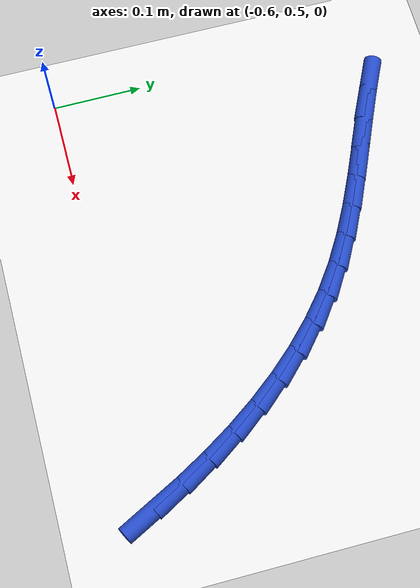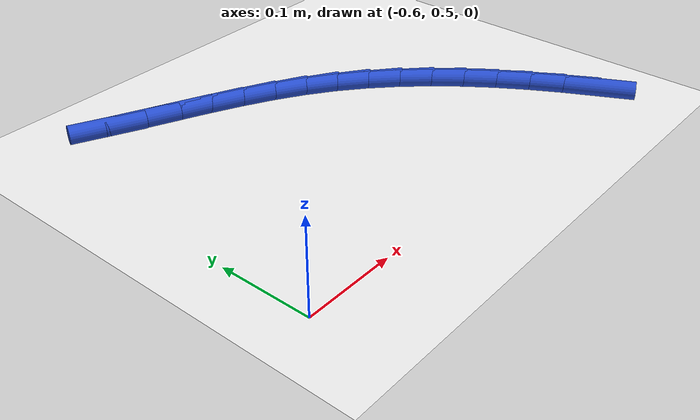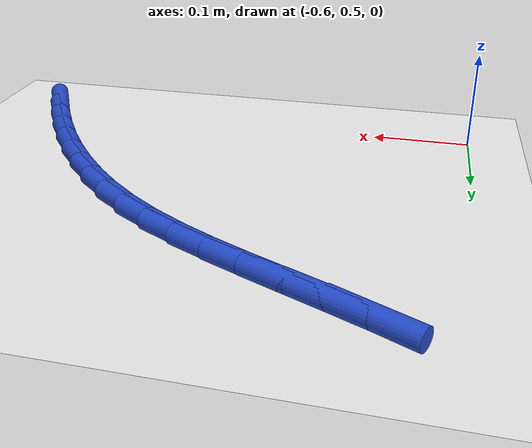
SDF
<sdf version="1.6">
 <world name="default">
  <model name="ground_plane">
   <static>1</static>
   <link name="link">
    <collision name="collision">
     <geometry><plane><normal>0 0 1</normal><size>100 100</size></plane></geometry>
     <surface><friction><ode><mu>100</mu><mu2>50</mu2></ode></friction></surface>
    </collision>
    <visual name="visual">
     <cast_shadows>0</cast_shadows>
     <geometry><plane><normal>0 0 1</normal><size>100 100</size></plane></geometry>
     <material>
      <script><uri>file://media/materials/scripts/gazebo.material</uri><name>Gazebo/WhiteGlow</name></script>
     </material>
    </visual>
   </link>
  </model>
  <model name="line">
   <link name="link_14">
    <pose>-0.1226075874852716 0.5017272240220647 0.01 0 1.57 -1.0996566863807242</pose>
    <collision name="collision">
     <geometry><cylinder><radius>0.01</radius><length>0.08</length></cylinder></geometry>
    </collision>
    <visual name="visual">
     <material>
      <script><name>Gazebo/Blue</name><uri>file://media/materials/scripts/gazebo.material</uri></script>
     </material>
     <geometry><cylinder><radius>0.01</radius><length>0.08</length></cylinder></geometry>
    </visual>
   </link>
   <link name="link_15">
    <pose>-0.13978582096815192 0.535449679863441 0.01 0 1.57 -1.0569655152053576</pose>
    <collision name="collision">
     <geometry><cylinder><radius>0.01</radius><length>0.08</length></cylinder></geometry>
    </collision>
    <visual name="visual">
     <material>
      <script><name>Gazebo/Blue</name><uri>file://media/materials/scripts/gazebo.material</uri></script>
     </material>
     <geometry><cylinder><radius>0.01</radius><length>0.08</length></cylinder></geometry>
    </visual>
   </link>
   <link name="link_16">
    <pose>-0.15824949231334112 0.568163545680186 0.01 0 1.57 -1.0099160939286953</pose>
    <collision name="collision">
     <geometry><cylinder><radius>0.01</radius><length>0.08</length></cylinder></geometry>
    </collision>
    <visual name="visual">
     <material>
      <script><name>Gazebo/Blue</name><uri>file://media/materials/scripts/gazebo.material</uri></script>
     </material>
     <geometry><cylinder><radius>0.01</radius><length>0.08</length></cylinder></geometry>
    </visual>
   </link>
   <link name="link_17">
    <pose>-0.17805523238407775 0.5996924903800042 0.01 0 1.57 -0.958136275318392</pose>
    <collision name="collision">
     <geometry><cylinder><radius>0.01</radius><length>0.08</length></cylinder></geometry>
    </collision>
    <visual name="visual">
     <material>
      <script><name>Gazebo/Blue</name><uri>file://media/materials/scripts/gazebo.material</uri></script>
     </material>
     <geometry><cylinder><radius>0.01</radius><length>0.08</length></cylinder></geometry>
    </visual>
   </link>
   <link name="link_18">
    <pose>-0.19925967204360048 0.6298601828706004 0.01 0 1.57 -0.9012804884405026</pose>
    <collision name="collision">
     <geometry><cylinder><radius>0.01</radius><length>0.08</length></cylinder></geometry>
    </collision>
    <visual name="visual">
     <material>
      <script><name>Gazebo/Blue</name><uri>file://media/materials/scripts/gazebo.material</uri></script>
     </material>
     <geometry><cylinder><radius>0.01</radius><length>0.08</length></cylinder></geometry>
    </visual>
   </link>
   <link name="link_19">
    <pose>-0.22191944215514767 0.6584902920596791 0.01 0 1.57 -0.8390669667489712</pose>
    <collision name="collision">
     <geometry><cylinder><radius>0.01</radius><length>0.08</length></cylinder></geometry>
    </collision>
    <visual name="visual">
     <material>
      <script><name>Gazebo/Blue</name><uri>file://media/materials/scripts/gazebo.material</uri></script>
     </material>
     <geometry><cylinder><radius>0.01</radius><length>0.08</length></cylinder></geometry>
    </visual>
   </link>
   <link name="link_20">
    <pose>-0.24609117358195798 0.6854064868549445 0.01 0 1.57 -0.7713272634052497</pose>
    <collision name="collision">
     <geometry><cylinder><radius>0.01</radius><length>0.08</length></cylinder></geometry>
    </collision>
    <visual name="visual">
     <material>
      <script><name>Gazebo/Blue</name><uri>file://media/materials/scripts/gazebo.material</uri></script>
     </material>
     <geometry><cylinder><radius>0.01</radius><length>0.08</length></cylinder></geometry>
    </visual>
   </link>
   <link name="link_21">
    <pose>-0.2718314971872702 0.710432436164102 0.01 0 1.57 -0.6980663497602803</pose>
    <collision name="collision">
     <geometry><cylinder><radius>0.01</radius><length>0.08</length></cylinder></geometry>
    </collision>
    <visual name="visual">
     <material>
      <script><name>Gazebo/Blue</name><uri>file://media/materials/scripts/gazebo.material</uri></script>
     </material>
     <geometry><cylinder><radius>0.01</radius><length>0.08</length></cylinder></geometry>
    </visual>
   </link>
   <link name="link_22">
    <pose>-0.29919704383432244 0.7333918088948556 0.01 0 1.57 -0.6196539736845612</pose>
    <collision name="collision">
     <geometry><cylinder><radius>0.01</radius><length>0.08</length></cylinder></geometry>
    </collision>
    <visual name="visual">
     <material>
      <script><name>Gazebo/Blue</name><uri>file://media/materials/scripts/gazebo.material</uri></script>
     </material>
     <geometry><cylinder><radius>0.01</radius><length>0.08</length></cylinder></geometry>
    </visual>
   </link>
   <link name="link_23">
    <pose>-0.3282421768702616 0.754112221997207 0.01 0 1.57 -0.5445846375043158</pose>
    <collision name="collision">
     <geometry><cylinder><radius>0.01</radius><length>0.08</length></cylinder></geometry>
    </collision>
    <visual name="visual">
     <material>
      <script><name>Gazebo/Blue</name><uri>file://media/materials/scripts/gazebo.material</uri></script>
     </material>
     <geometry><cylinder><radius>0.01</radius><length>0.08</length></cylinder></geometry>
    </visual>
   </link>
   <link name="link_24">
    <pose>-0.3588792933622943 0.7726684742955864 0.01 0 1.57 -0.48587849276729356</pose>
    <collision name="collision">
     <geometry><cylinder><radius>0.01</radius><length>0.08</length></cylinder></geometry>
    </collision>
    <visual name="visual">
     <material>
      <script><name>Gazebo/Blue</name><uri>file://media/materials/scripts/gazebo.material</uri></script>
     </material>
     <geometry><cylinder><radius>0.01</radius><length>0.08</length></cylinder></geometry>
    </visual>
   </link>
   <link name="link_25">
    <pose>-0.39079727221336463 0.7895245389932632 0.01 0 1.57 -0.4444831121165945</pose>
    <collision name="collision">
     <geometry><cylinder><radius>0.01</radius><length>0.08</length></cylinder></geometry>
    </collision>
    <visual name="visual">
     <material>
      <script><name>Gazebo/Blue</name><uri>file://media/materials/scripts/gazebo.material</uri></script>
     </material>
     <geometry><cylinder><radius>0.01</radius><length>0.08</length></cylinder></geometry>
    </visual>
   </link>
   <link name="link_26">
    <pose>-0.4236653535442671 0.8051785829836233 0.01 0 1.57 -0.4198910959469405</pose>
    <collision name="collision">
     <geometry><cylinder><radius>0.01</radius><length>0.08</length></cylinder></geometry>
    </collision>
    <visual name="visual">
     <material>
      <script><name>Gazebo/Blue</name><uri>file://media/materials/scripts/gazebo.material</uri></script>
     </material>
     <geometry><cylinder><radius>0.01</radius><length>0.08</length></cylinder></geometry>
    </visual>
   </link>
   <link name="link_27">
    <pose>-0.45715277747579525 0.8201287731600525 0.01 0 1.57 -0.41160252978669476</pose>
    <collision name="collision">
     <geometry><cylinder><radius>0.01</radius><length>0.08</length></cylinder></geometry>
    </collision>
    <visual name="visual">
     <material>
      <script><name>Gazebo/Blue</name><uri>file://media/materials/scripts/gazebo.material</uri></script>
     </material>
     <geometry><cylinder><radius>0.01</radius><length>0.08</length></cylinder></geometry>
    </visual>
   </link>
   <link name="link_28">
    <pose>-0.4909287841287434 0.8348732764159369 0.01 0 1.57 -0.41931719088102754</pose>
    <collision name="collision">
     <geometry><cylinder><radius>0.01</radius><length>0.08</length></cylinder></geometry>
    </collision>
    <visual name="visual">
     <material>
      <script><name>Gazebo/Blue</name><uri>file://media/materials/scripts/gazebo.material</uri></script>
     </material>
     <geometry><cylinder><radius>0.01</radius><length>0.08</length></cylinder></geometry>
    </visual>
   </link>
   <link name="link_29">
    <pose>-0.5246626136239061 0.8499102596446625 0.01 0 1.57 -0.4429885939198672</pose>
    <collision name="collision">
     <geometry><cylinder><radius>0.01</radius><length>0.08</length></cylinder></geometry>
    </collision>
    <visual name="visual">
     <material>
      <script><name>Gazebo/Blue</name><uri>file://media/materials/scripts/gazebo.material</uri></script>
     </material>
     <geometry><cylinder><radius>0.01</radius><length>0.08</length></cylinder></geometry>
    </visual>
   </link>
  </model>
 </world>
</sdf>
